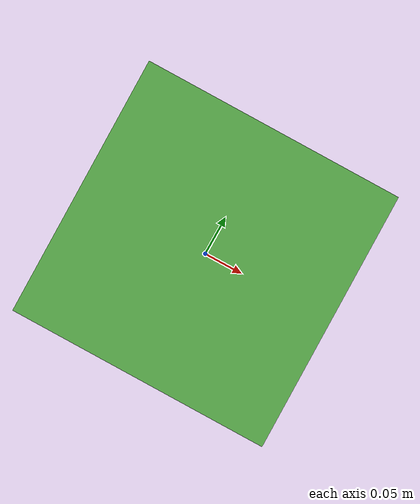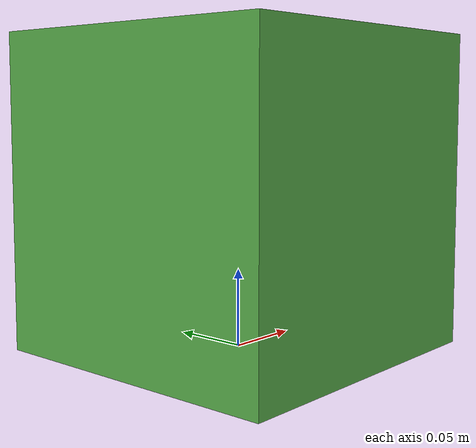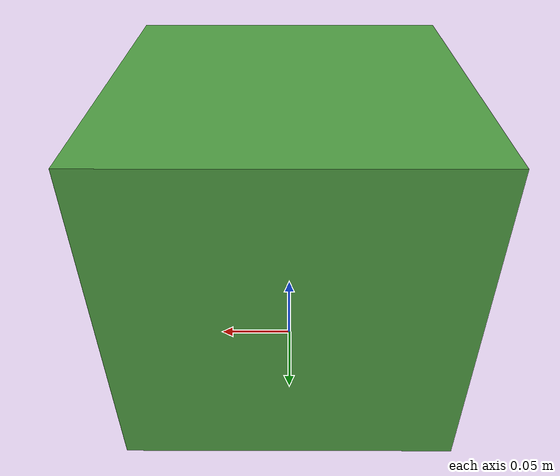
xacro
<?xml version="1.0"?>
<robot name="slider_joint"
       xmlns:xi="http://www.w3.org/2001/XInclude"
       xmlns:gazebo="http://playerstage.sourceforge.net/gazebo/xmlschema/#gz"
       xmlns:model="http://playerstage.sourceforge.net/gazebo/xmlschema/#model"
       xmlns:sensor="http://playerstage.sourceforge.net/gazebo/xmlschema/#sensor"
       xmlns:body="http://playerstage.sourceforge.net/gazebo/xmlschema/#body"
       xmlns:geom="http://playerstage.sourceforge.net/gazebo/xmlschema/#geom"
       xmlns:joint="http://playerstage.sourceforge.net/gazebo/xmlschema/#joint"
       xmlns:interface="http://playerstage.sourceforge.net/gazebo/xmlschema/#interface"
       xmlns:rendering="http://playerstage.sourceforge.net/gazebo/xmlschema/#rendering"
       xmlns:renderable="http://playerstage.sourceforge.net/gazebo/xmlschema/#renderable"
       xmlns:controller="http://playerstage.sourceforge.net/gazebo/xmlschema/#controller"
       xmlns:physics="http://playerstage.sourceforge.net/gazebo/xmlschema/#physics">

  <link name="world"/>
  <!-- need a joint until urdf is fixed -->
  <joint name="link_joint" type="floating">
    <parent link="world" />
    <origin xyz="0 0 0.1" rpy="0 0 0" />
    <child link="link" />
  </joint>
  <!-- a single slider link -->
  <link name="link">
    <inertial >
      <mass value="10" />
      <origin xyz="0 0 -0.1" />
      <inertia  ixx="0.1" ixy="0.0"  ixz="0.0"  iyy="0.1"  iyz="0.0"  izz="0.1" />
    </inertial>
    <visual >
      <origin xyz="0 0 0" rpy="0 0 0" />
      <geometry>
        <box size="0.2 0.2 0.2" />
      </geometry>
    </visual>
    <collision >
      <origin xyz="0 0 0" rpy="0 0 0" />
      <geometry>
        <box size="0.2 0.2 0.2" />
      </geometry>
    </collision>
  </link>
  <gazebo reference="link">
    <material>Gazebo/GrassFloor</material>
    <turnGravityOff>false</turnGravityOff>
    <kp>1000000.0</kp>
    <kd>1.0</kd>
    <mu1>1.0</mu1>
    <mu2>1.0</mu2>
    <sensor:contact name="link_contact_sensor">
      <geom>link_geom</geom>
      <updateRate>1000.0</updateRate>
      <controller:gazebo_ros_bumper name="link_gazebo_ros_bumper_controller" plugin="libgazebo_ros_bumper.so">
        <alwaysOn>true</alwaysOn>
        <updateRate>1000.0</updateRate>
        <bumperTopicName>link_bumper</bumperTopicName>
        <interface:bumper name="link_bumper_iface" />
      </controller:gazebo_ros_bumper>
    </sensor:contact>
  </gazebo>

  <gazebo>
      <!-- PR2_ACTARRAY -->
      <controller:gazebo_ros_controller_manager name="gazebo_ros_controller_manager" plugin="libgazebo_ros_controller_manager.so">
        <alwaysOn>true</alwaysOn>
        <updateRate>1000.0</updateRate>
        <interface:audio name="gazebo_ros_controller_manager_dummy_iface" />
      </controller:gazebo_ros_controller_manager>

      <!-- gazebo_ros_p3d for position groundtruth -->
      <controller:gazebo_ros_p3d name="p3d_link_controller" plugin="libgazebo_ros_p3d.so">
          <alwaysOn>true</alwaysOn>
          <updateRate>100.0</updateRate>
          <bodyName>link</bodyName>
          <topicName>link_pose</topicName>
          <frameName>map</frameName>
          <interface:position name="p3d_link_position"/>
      </controller:gazebo_ros_p3d>
  </gazebo>

</robot>
